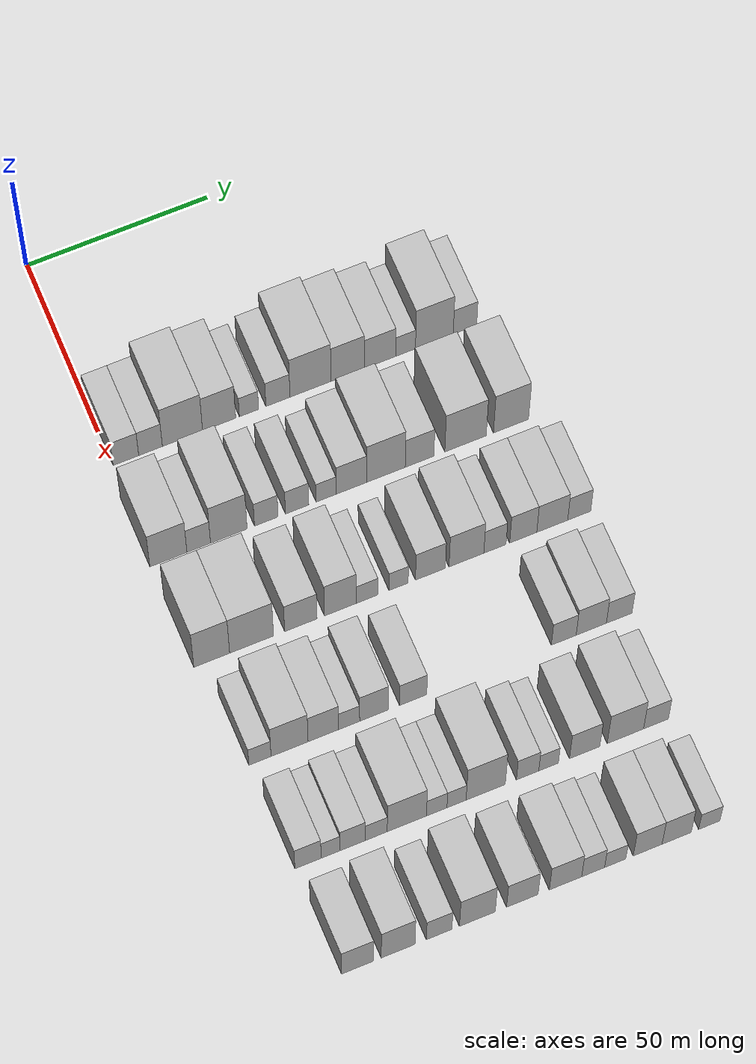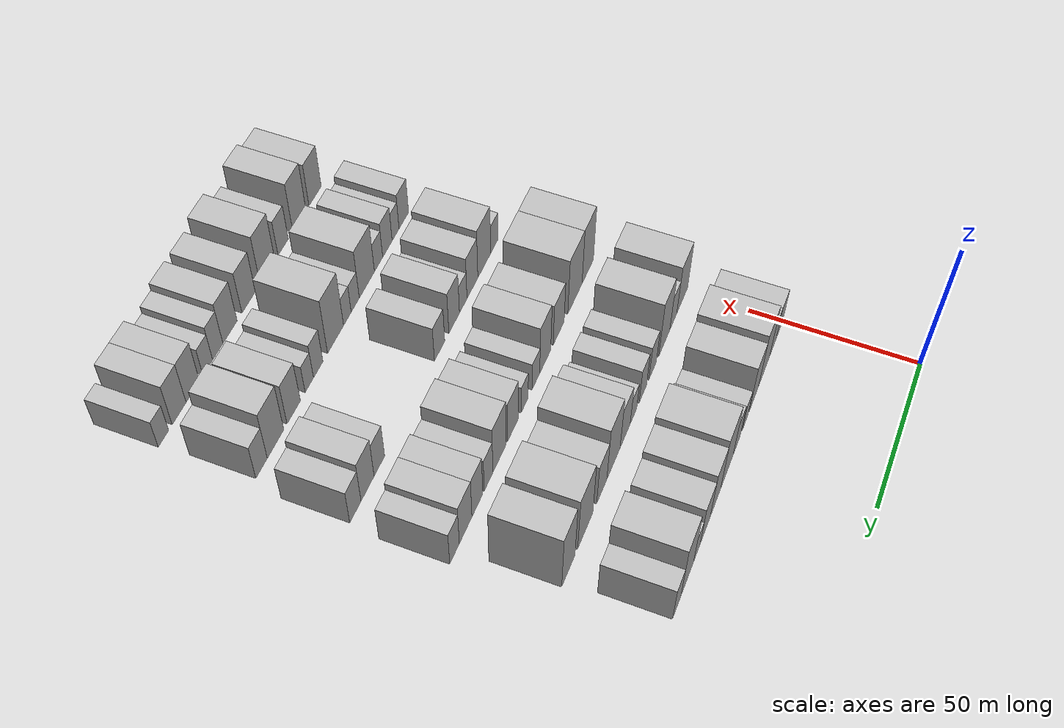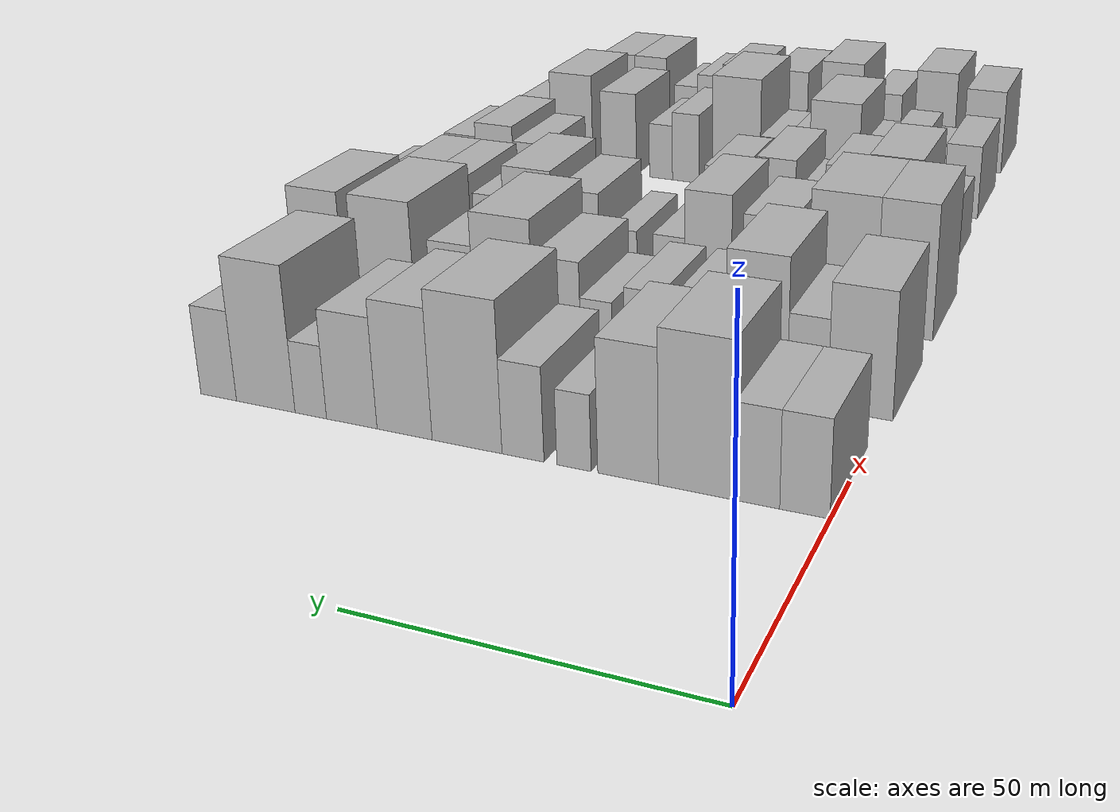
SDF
<sdf version="1.6">
 <world name="default">
  <model name="building_56">
   <static>1</static>
   <pose>50.0000 3.6371 0 0.000000 0.000000 0.000000</pose>
   <link name="link">
    <pose>0 0 7.50 0 0 0</pose>
    <collision name="collision"><geometry><box><size>20.0000 6.9614 15.0000</size></box></geometry></collision>
    <visual name="visual">
     <cast_shadows>0</cast_shadows>
     <geometry><box><size>20.0000 6.9614 15.0000</size></box></geometry>
     <material>
      <script>
       <uri>model://HANNAS_wall/materials/scripts</uri>
       <uri>model://HANNAS_wall/materials/textures</uri>
       <name>vrc/HANNAS_wall</name>
      </script>
     </material>
    </visual>
   </link>
  </model>
  <model name="building_57">
   <static>1</static>
   <pose>50.0000 10.3507 0 0.000000 0.000000 0.000000</pose>
   <link name="link">
    <pose>0 0 7.50 0 0 0</pose>
    <collision name="collision"><geometry><box><size>20.0000 6.4657 15.0000</size></box></geometry></collision>
    <visual name="visual">
     <cast_shadows>0</cast_shadows>
     <geometry><box><size>20.0000 6.4657 15.0000</size></box></geometry>
     <material>
      <script>
       <uri>model://HANNAS_wall/materials/scripts</uri>
       <uri>model://HANNAS_wall/materials/textures</uri>
       <name>vrc/HANNAS_wall</name>
      </script>
     </material>
    </visual>
   </link>
  </model>
  <model name="building_58">
   <static>1</static>
   <pose>50.0000 19.0759 0 0.000000 0.000000 0.000000</pose>
   <link name="link">
    <pose>0 0 12.00 0 0 0</pose>
    <collision name="collision"><geometry><box><size>20.0000 10.9847 24.0000</size></box></geometry></collision>
    <visual name="visual">
     <cast_shadows>0</cast_shadows>
     <geometry><box><size>20.0000 10.9847 24.0000</size></box></geometry>
     <material>
      <script>
       <uri>model://HANNAS_wall/materials/scripts</uri>
       <uri>model://HANNAS_wall/materials/textures</uri>
       <name>vrc/HANNAS_wall</name>
      </script>
     </material>
    </visual>
   </link>
  </model>
  <model name="building_59">
   <static>1</static>
   <pose>50.0000 29.1107 0 0.000000 0.000000 0.000000</pose>
   <link name="link">
    <pose>0 0 10.50 0 0 0</pose>
    <collision name="collision"><geometry><box><size>20.0000 9.0850 21.0000</size></box></geometry></collision>
    <visual name="visual">
     <cast_shadows>0</cast_shadows>
     <geometry><box><size>20.0000 9.0850 21.0000</size></box></geometry>
     <material>
      <script>
       <uri>model://HANNAS_wall/materials/scripts</uri>
       <uri>model://HANNAS_wall/materials/textures</uri>
       <name>vrc/HANNAS_wall</name>
      </script>
     </material>
    </visual>
   </link>
  </model>
  <model name="building_60">
   <static>1</static>
   <pose>50.0000 37.2919 0 0.000000 0.000000 0.000000</pose>
   <link name="link">
    <pose>0 0 6.00 0 0 0</pose>
    <collision name="collision"><geometry><box><size>20.0000 5.2774 12.0000</size></box></geometry></collision>
    <visual name="visual">
     <cast_shadows>0</cast_shadows>
     <geometry><box><size>20.0000 5.2774 12.0000</size></box></geometry>
     <material>
      <script>
       <uri>model://HANNAS_wall/materials/scripts</uri>
       <uri>model://HANNAS_wall/materials/textures</uri>
       <name>vrc/HANNAS_wall</name>
      </script>
     </material>
    </visual>
   </link>
  </model>
  <model name="building_61">
   <static>1</static>
   <pose>50.0000 45.2423 0 0.000000 0.000000 0.000000</pose>
   <link name="link">
    <pose>0 0 7.50 0 0 0</pose>
    <collision name="collision"><geometry><box><size>20.0000 6.6234 15.0000</size></box></geometry></collision>
    <visual name="visual">
     <cast_shadows>0</cast_shadows>
     <geometry><box><size>20.0000 6.6234 15.0000</size></box></geometry>
     <material>
      <script>
       <uri>model://HANNAS_wall/materials/scripts</uri>
       <uri>model://HANNAS_wall/materials/textures</uri>
       <name>vrc/HANNAS_wall</name>
      </script>
     </material>
    </visual>
   </link>
  </model>
  <model name="building_62">
   <static>1</static>
   <pose>50.0000 54.2125 0 0.000000 0.000000 0.000000</pose>
   <link name="link">
    <pose>0 0 12.00 0 0 0</pose>
    <collision name="collision"><geometry><box><size>20.0000 11.3170 24.0000</size></box></geometry></collision>
    <visual name="visual">
     <cast_shadows>0</cast_shadows>
     <geometry><box><size>20.0000 11.3170 24.0000</size></box></geometry>
     <material>
      <script>
       <uri>model://HANNAS_wall/materials/scripts</uri>
       <uri>model://HANNAS_wall/materials/textures</uri>
       <name>vrc/HANNAS_wall</name>
      </script>
     </material>
    </visual>
   </link>
  </model>
  <model name="building_63">
   <static>1</static>
   <pose>50.0000 64.4674 0 0.000000 0.000000 0.000000</pose>
   <link name="link">
    <pose>0 0 10.50 0 0 0</pose>
    <collision name="collision"><geometry><box><size>20.0000 9.1930 21.0000</size></box></geometry></collision>
    <visual name="visual">
     <cast_shadows>0</cast_shadows>
     <geometry><box><size>20.0000 9.1930 21.0000</size></box></geometry>
     <material>
      <script>
       <uri>model://HANNAS_wall/materials/scripts</uri>
       <uri>model://HANNAS_wall/materials/textures</uri>
       <name>vrc/HANNAS_wall</name>
      </script>
     </material>
    </visual>
   </link>
  </model>
  <model name="building_64">
   <static>1</static>
   <pose>50.0000 73.3906 0 0.000000 0.000000 0.000000</pose>
   <link name="link">
    <pose>0 0 9.00 0 0 0</pose>
    <collision name="collision"><geometry><box><size>20.0000 8.6534 18.0000</size></box></geometry></collision>
    <visual name="visual">
     <cast_shadows>0</cast_shadows>
     <geometry><box><size>20.0000 8.6534 18.0000</size></box></geometry>
     <material>
      <script>
       <uri>model://HANNAS_wall/materials/scripts</uri>
       <uri>model://HANNAS_wall/materials/textures</uri>
       <name>vrc/HANNAS_wall</name>
      </script>
     </material>
    </visual>
   </link>
  </model>
  <model name="building_65">
   <static>1</static>
   <pose>50.0000 80.4707 0 0.000000 0.000000 0.000000</pose>
   <link name="link">
    <pose>0 0 6.00 0 0 0</pose>
    <collision name="collision"><geometry><box><size>20.0000 5.5068 12.0000</size></box></geometry></collision>
    <visual name="visual">
     <cast_shadows>0</cast_shadows>
     <geometry><box><size>20.0000 5.5068 12.0000</size></box></geometry>
     <material>
      <script>
       <uri>model://HANNAS_wall/materials/scripts</uri>
       <uri>model://HANNAS_wall/materials/textures</uri>
       <name>vrc/HANNAS_wall</name>
      </script>
     </material>
    </visual>
   </link>
  </model>
  <model name="building_66">
   <static>1</static>
   <pose>50.0000 88.4599 0 0.000000 0.000000 0.000000</pose>
   <link name="link">
    <pose>0 0 12.00 0 0 0</pose>
    <collision name="collision"><geometry><box><size>20.0000 10.4717 24.0000</size></box></geometry></collision>
    <visual name="visual">
     <cast_shadows>0</cast_shadows>
     <geometry><box><size>20.0000 10.4717 24.0000</size></box></geometry>
     <material>
      <script>
       <uri>model://HANNAS_wall/materials/scripts</uri>
       <uri>model://HANNAS_wall/materials/textures</uri>
       <name>vrc/HANNAS_wall</name>
      </script>
     </material>
    </visual>
   </link>
  </model>
  <model name="building_67">
   <static>1</static>
   <pose>50.0000 96.9630 0 0.000000 0.000000 0.000000</pose>
   <link name="link">
    <pose>0 0 7.50 0 0 0</pose>
    <collision name="collision"><geometry><box><size>20.0000 6.5345 15.0000</size></box></geometry></collision>
    <visual name="visual">
     <cast_shadows>0</cast_shadows>
     <geometry><box><size>20.0000 6.5345 15.0000</size></box></geometry>
     <material>
      <script>
       <uri>model://HANNAS_wall/materials/scripts</uri>
       <uri>model://HANNAS_wall/materials/textures</uri>
       <name>vrc/HANNAS_wall</name>
      </script>
     </material>
    </visual>
   </link>
  </model>
  <model name="building_169">
   <static>1</static>
   <pose>79.0000 3.5950 0 0.000000 0.000000 0.000000</pose>
   <link name="link">
    <pose>0 0 10.50 0 0 0</pose>
    <collision name="collision"><geometry><box><size>20.0000 10.0340 21.0000</size></box></geometry></collision>
    <visual name="visual">
     <cast_shadows>0</cast_shadows>
     <geometry><box><size>20.0000 10.0340 21.0000</size></box></geometry>
     <material>
      <script>
       <uri>model://HANNAS_wall/materials/scripts</uri>
       <uri>model://HANNAS_wall/materials/textures</uri>
       <name>vrc/HANNAS_wall</name>
      </script>
     </material>
    </visual>
   </link>
  </model>
  <model name="building_170">
   <static>1</static>
   <pose>79.0000 11.8076 0 0.000000 0.000000 0.000000</pose>
   <link name="link">
    <pose>0 0 7.50 0 0 0</pose>
    <collision name="collision"><geometry><box><size>20.0000 6.3911 15.0000</size></box></geometry></collision>
    <visual name="visual">
     <cast_shadows>0</cast_shadows>
     <geometry><box><size>20.0000 6.3911 15.0000</size></box></geometry>
     <material>
      <script>
       <uri>model://HANNAS_wall/materials/scripts</uri>
       <uri>model://HANNAS_wall/materials/textures</uri>
       <name>vrc/HANNAS_wall</name>
      </script>
     </material>
    </visual>
   </link>
  </model>
  <model name="building_171">
   <static>1</static>
   <pose>79.0000 19.9732 0 0.000000 0.000000 0.000000</pose>
   <link name="link">
    <pose>0 0 12.00 0 0 0</pose>
    <collision name="collision"><geometry><box><size>20.0000 9.9402 24.0000</size></box></geometry></collision>
    <visual name="visual">
     <cast_shadows>0</cast_shadows>
     <geometry><box><size>20.0000 9.9402 24.0000</size></box></geometry>
     <material>
      <script>
       <uri>model://HANNAS_wall/materials/scripts</uri>
       <uri>model://HANNAS_wall/materials/textures</uri>
       <name>vrc/HANNAS_wall</name>
      </script>
     </material>
    </visual>
   </link>
  </model>
  <model name="building_172">
   <static>1</static>
   <pose>79.0000 30.1608 0 0.000000 0.000000 0.000000</pose>
   <link name="link">
    <pose>0 0 7.50 0 0 0</pose>
    <collision name="collision"><geometry><box><size>20.0000 6.4350 15.0000</size></box></geometry></collision>
    <visual name="visual">
     <cast_shadows>0</cast_shadows>
     <geometry><box><size>20.0000 6.4350 15.0000</size></box></geometry>
     <material>
      <script>
       <uri>model://HANNAS_wall/materials/scripts</uri>
       <uri>model://HANNAS_wall/materials/textures</uri>
       <name>vrc/HANNAS_wall</name>
      </script>
     </material>
    </visual>
   </link>
  </model>
  <model name="building_173">
   <static>1</static>
   <pose>79.0000 38.5622 0 0.000000 0.000000 0.000000</pose>
   <link name="link">
    <pose>0 0 7.50 0 0 0</pose>
    <collision name="collision"><geometry><box><size>20.0000 6.3679 15.0000</size></box></geometry></collision>
    <visual name="visual">
     <cast_shadows>0</cast_shadows>
     <geometry><box><size>20.0000 6.3679 15.0000</size></box></geometry>
     <material>
      <script>
       <uri>model://HANNAS_wall/materials/scripts</uri>
       <uri>model://HANNAS_wall/materials/textures</uri>
       <name>vrc/HANNAS_wall</name>
      </script>
     </material>
    </visual>
   </link>
  </model>
  <model name="building_174">
   <static>1</static>
   <pose>79.0000 46.4916 0 0.000000 0.000000 0.000000</pose>
   <link name="link">
    <pose>0 0 6.00 0 0 0</pose>
    <collision name="collision"><geometry><box><size>20.0000 5.4908 12.0000</size></box></geometry></collision>
    <visual name="visual">
     <cast_shadows>0</cast_shadows>
     <geometry><box><size>20.0000 5.4908 12.0000</size></box></geometry>
     <material>
      <script>
       <uri>model://HANNAS_wall/materials/scripts</uri>
       <uri>model://HANNAS_wall/materials/textures</uri>
       <name>vrc/HANNAS_wall</name>
      </script>
     </material>
    </visual>
   </link>
  </model>
  <model name="building_175">
   <static>1</static>
   <pose>79.0000 53.3858 0 0.000000 0.000000 0.000000</pose>
   <link name="link">
    <pose>0 0 9.00 0 0 0</pose>
    <collision name="collision"><geometry><box><size>20.0000 8.2976 18.0000</size></box></geometry></collision>
    <visual name="visual">
     <cast_shadows>0</cast_shadows>
     <geometry><box><size>20.0000 8.2976 18.0000</size></box></geometry>
     <material>
      <script>
       <uri>model://HANNAS_wall/materials/scripts</uri>
       <uri>model://HANNAS_wall/materials/textures</uri>
       <name>vrc/HANNAS_wall</name>
      </script>
     </material>
    </visual>
   </link>
  </model>
  <model name="building_176">
   <static>1</static>
   <pose>79.0000 62.8429 0 0.000000 0.000000 0.000000</pose>
   <link name="link">
    <pose>0 0 12.00 0 0 0</pose>
    <collision name="collision"><geometry><box><size>20.0000 10.6166 24.0000</size></box></geometry></collision>
    <visual name="visual">
     <cast_shadows>0</cast_shadows>
     <geometry><box><size>20.0000 10.6166 24.0000</size></box></geometry>
     <material>
      <script>
       <uri>model://HANNAS_wall/materials/scripts</uri>
       <uri>model://HANNAS_wall/materials/textures</uri>
       <name>vrc/HANNAS_wall</name>
      </script>
     </material>
    </visual>
   </link>
  </model>
  <model name="building_177">
   <static>1</static>
   <pose>79.0000 72.0844 0 0.000000 0.000000 0.000000</pose>
   <link name="link">
    <pose>0 0 9.00 0 0 0</pose>
    <collision name="collision"><geometry><box><size>20.0000 7.8665 18.0000</size></box></geometry></collision>
    <visual name="visual">
     <cast_shadows>0</cast_shadows>
     <geometry><box><size>20.0000 7.8665 18.0000</size></box></geometry>
     <material>
      <script>
       <uri>model://HANNAS_wall/materials/scripts</uri>
       <uri>model://HANNAS_wall/materials/textures</uri>
       <name>vrc/HANNAS_wall</name>
      </script>
     </material>
    </visual>
   </link>
  </model>
  <model name="building_178">
   <static>1</static>
   <pose>79.0000 84.7339 0 0.000000 0.000000 0.000000</pose>
   <link name="link">
    <pose>0 0 12.00 0 0 0</pose>
    <collision name="collision"><geometry><box><size>20.0000 11.4324 24.0000</size></box></geometry></collision>
    <visual name="visual">
     <cast_shadows>0</cast_shadows>
     <geometry><box><size>20.0000 11.4324 24.0000</size></box></geometry>
     <material>
      <script>
       <uri>model://HANNAS_wall/materials/scripts</uri>
       <uri>model://HANNAS_wall/materials/textures</uri>
       <name>vrc/HANNAS_wall</name>
      </script>
     </material>
    </visual>
   </link>
  </model>
  <model name="building_179">
   <static>1</static>
   <pose>79.0000 97.2888 0 0.000000 0.000000 0.000000</pose>
   <link name="link">
    <pose>0 0 12.00 0 0 0</pose>
    <collision name="collision"><geometry><box><size>20.0000 9.6774 24.0000</size></box></geometry></collision>
    <visual name="visual">
     <cast_shadows>0</cast_shadows>
     <geometry><box><size>20.0000 9.6774 24.0000</size></box></geometry>
     <material>
      <script>
       <uri>model://HANNAS_wall/materials/scripts</uri>
       <uri>model://HANNAS_wall/materials/textures</uri>
       <name>vrc/HANNAS_wall</name>
      </script>
     </material>
    </visual>
   </link>
  </model>
  <model name="building_281">
   <static>1</static>
   <pose>108.0000 3.5901 0 0.000000 0.000000 0.000000</pose>
   <link name="link">
    <pose>0 0 12.00 0 0 0</pose>
    <collision name="collision"><geometry><box><size>20.0000 9.6324 24.0000</size></box></geometry></collision>
    <visual name="visual">
     <cast_shadows>0</cast_shadows>
     <geometry><box><size>20.0000 9.6324 24.0000</size></box></geometry>
     <material>
      <script>
       <uri>model://HANNAS_wall/materials/scripts</uri>
       <uri>model://HANNAS_wall/materials/textures</uri>
       <name>vrc/HANNAS_wall</name>
      </script>
     </material>
    </visual>
   </link>
  </model>
  <model name="building_282">
   <static>1</static>
   <pose>108.0000 14.3198 0 0.000000 0.000000 0.000000</pose>
   <link name="link">
    <pose>0 0 12.00 0 0 0</pose>
    <collision name="collision"><geometry><box><size>20.0000 11.8270 24.0000</size></box></geometry></collision>
    <visual name="visual">
     <cast_shadows>0</cast_shadows>
     <geometry><box><size>20.0000 11.8270 24.0000</size></box></geometry>
     <material>
      <script>
       <uri>model://HANNAS_wall/materials/scripts</uri>
       <uri>model://HANNAS_wall/materials/textures</uri>
       <name>vrc/HANNAS_wall</name>
      </script>
     </material>
    </visual>
   </link>
  </model>
  <model name="building_283">
   <static>1</static>
   <pose>108.0000 27.6106 0 0.000000 0.000000 0.000000</pose>
   <link name="link">
    <pose>0 0 9.00 0 0 0</pose>
    <collision name="collision"><geometry><box><size>20.0000 8.7546 18.0000</size></box></geometry></collision>
    <visual name="visual">
     <cast_shadows>0</cast_shadows>
     <geometry><box><size>20.0000 8.7546 18.0000</size></box></geometry>
     <material>
      <script>
       <uri>model://HANNAS_wall/materials/scripts</uri>
       <uri>model://HANNAS_wall/materials/textures</uri>
       <name>vrc/HANNAS_wall</name>
      </script>
     </material>
    </visual>
   </link>
  </model>
  <model name="building_284">
   <static>1</static>
   <pose>108.0000 38.2926 0 0.000000 0.000000 0.000000</pose>
   <link name="link">
    <pose>0 0 10.50 0 0 0</pose>
    <collision name="collision"><geometry><box><size>20.0000 8.6093 21.0000</size></box></geometry></collision>
    <visual name="visual">
     <cast_shadows>0</cast_shadows>
     <geometry><box><size>20.0000 8.6093 21.0000</size></box></geometry>
     <material>
      <script>
       <uri>model://HANNAS_wall/materials/scripts</uri>
       <uri>model://HANNAS_wall/materials/textures</uri>
       <name>vrc/HANNAS_wall</name>
      </script>
     </material>
    </visual>
   </link>
  </model>
  <model name="building_285">
   <static>1</static>
   <pose>108.0000 45.5428 0 0.000000 0.000000 0.000000</pose>
   <link name="link">
    <pose>0 0 6.00 0 0 0</pose>
    <collision name="collision"><geometry><box><size>20.0000 5.8910 12.0000</size></box></geometry></collision>
    <visual name="visual">
     <cast_shadows>0</cast_shadows>
     <geometry><box><size>20.0000 5.8910 12.0000</size></box></geometry>
     <material>
      <script>
       <uri>model://HANNAS_wall/materials/scripts</uri>
       <uri>model://HANNAS_wall/materials/textures</uri>
       <name>vrc/HANNAS_wall</name>
      </script>
     </material>
    </visual>
   </link>
  </model>
  <model name="building_286">
   <static>1</static>
   <pose>108.0000 54.0891 0 0.000000 0.000000 0.000000</pose>
   <link name="link">
    <pose>0 0 6.00 0 0 0</pose>
    <collision name="collision"><geometry><box><size>20.0000 5.2016 12.0000</size></box></geometry></collision>
    <visual name="visual">
     <cast_shadows>0</cast_shadows>
     <geometry><box><size>20.0000 5.2016 12.0000</size></box></geometry>
     <material>
      <script>
       <uri>model://HANNAS_wall/materials/scripts</uri>
       <uri>model://HANNAS_wall/materials/textures</uri>
       <name>vrc/HANNAS_wall</name>
      </script>
     </material>
    </visual>
   </link>
  </model>
  <model name="building_287">
   <static>1</static>
   <pose>108.0000 62.7587 0 0.000000 0.000000 0.000000</pose>
   <link name="link">
    <pose>0 0 9.00 0 0 0</pose>
    <collision name="collision"><geometry><box><size>20.0000 8.1377 18.0000</size></box></geometry></collision>
    <visual name="visual">
     <cast_shadows>0</cast_shadows>
     <geometry><box><size>20.0000 8.1377 18.0000</size></box></geometry>
     <material>
      <script>
       <uri>model://HANNAS_wall/materials/scripts</uri>
       <uri>model://HANNAS_wall/materials/textures</uri>
       <name>vrc/HANNAS_wall</name>
      </script>
     </material>
    </visual>
   </link>
  </model>
  <model name="building_288">
   <static>1</static>
   <pose>108.0000 72.5805 0 0.000000 0.000000 0.000000</pose>
   <link name="link">
    <pose>0 0 10.50 0 0 0</pose>
    <collision name="collision"><geometry><box><size>20.0000 9.5059 21.0000</size></box></geometry></collision>
    <visual name="visual">
     <cast_shadows>0</cast_shadows>
     <geometry><box><size>20.0000 9.5059 21.0000</size></box></geometry>
     <material>
      <script>
       <uri>model://HANNAS_wall/materials/scripts</uri>
       <uri>model://HANNAS_wall/materials/textures</uri>
       <name>vrc/HANNAS_wall</name>
      </script>
     </material>
    </visual>
   </link>
  </model>
  <model name="building_289">
   <static>1</static>
   <pose>108.0000 80.3712 0 0.000000 0.000000 0.000000</pose>
   <link name="link">
    <pose>0 0 7.50 0 0 0</pose>
    <collision name="collision"><geometry><box><size>20.0000 6.0755 15.0000</size></box></geometry></collision>
    <visual name="visual">
     <cast_shadows>0</cast_shadows>
     <geometry><box><size>20.0000 6.0755 15.0000</size></box></geometry>
     <material>
      <script>
       <uri>model://HANNAS_wall/materials/scripts</uri>
       <uri>model://HANNAS_wall/materials/textures</uri>
       <name>vrc/HANNAS_wall</name>
      </script>
     </material>
    </visual>
   </link>
  </model>
  <model name="building_290">
   <static>1</static>
   <pose>108.0000 88.1270 0 0.000000 0.000000 0.000000</pose>
   <link name="link">
    <pose>0 0 9.00 0 0 0</pose>
    <collision name="collision"><geometry><box><size>20.0000 7.4360 18.0000</size></box></geometry></collision>
    <visual name="visual">
     <cast_shadows>0</cast_shadows>
     <geometry><box><size>20.0000 7.4360 18.0000</size></box></geometry>
     <material>
      <script>
       <uri>model://HANNAS_wall/materials/scripts</uri>
       <uri>model://HANNAS_wall/materials/textures</uri>
       <name>vrc/HANNAS_wall</name>
      </script>
     </material>
    </visual>
   </link>
  </model>
  <model name="building_291">
   <static>1</static>
   <pose>108.0000 96.0895 0 0.000000 0.000000 0.000000</pose>
   <link name="link">
    <pose>0 0 9.00 0 0 0</pose>
    <collision name="collision"><geometry><box><size>20.0000 8.4892 18.0000</size></box></geometry></collision>
    <visual name="visual">
     <cast_shadows>0</cast_shadows>
     <geometry><box><size>20.0000 8.4892 18.0000</size></box></geometry>
     <material>
      <script>
       <uri>model://HANNAS_wall/materials/scripts</uri>
       <uri>model://HANNAS_wall/materials/textures</uri>
       <name>vrc/HANNAS_wall</name>
      </script>
     </material>
    </visual>
   </link>
  </model>
  <model name="building_292">
   <static>1</static>
   <pose>108.0000 103.4969 0 0.000000 0.000000 0.000000</pose>
   <link name="link">
    <pose>0 0 7.50 0 0 0</pose>
    <collision name="collision"><geometry><box><size>20.0000 6.3256 15.0000</size></box></geometry></collision>
    <visual name="visual">
     <cast_shadows>0</cast_shadows>
     <geometry><box><size>20.0000 6.3256 15.0000</size></box></geometry>
     <material>
      <script>
       <uri>model://HANNAS_wall/materials/scripts</uri>
       <uri>model://HANNAS_wall/materials/textures</uri>
       <name>vrc/HANNAS_wall</name>
      </script>
     </material>
    </visual>
   </link>
  </model>
  <model name="building_388">
   <static>1</static>
   <pose>137.0000 4.7180 0 0.000000 0.000000 0.000000</pose>
   <link name="link">
    <pose>0 0 6.00 0 0 0</pose>
    <collision name="collision"><geometry><box><size>20.0000 5.9204 12.0000</size></box></geometry></collision>
    <visual name="visual">
     <cast_shadows>0</cast_shadows>
     <geometry><box><size>20.0000 5.9204 12.0000</size></box></geometry>
     <material>
      <script>
       <uri>model://HANNAS_wall/materials/scripts</uri>
       <uri>model://HANNAS_wall/materials/textures</uri>
       <name>vrc/HANNAS_wall</name>
      </script>
     </material>
    </visual>
   </link>
  </model>
  <model name="building_389">
   <static>1</static>
   <pose>137.0000 12.6287 0 0.000000 0.000000 0.000000</pose>
   <link name="link">
    <pose>0 0 10.50 0 0 0</pose>
    <collision name="collision"><geometry><box><size>20.0000 9.9010 21.0000</size></box></geometry></collision>
    <visual name="visual">
     <cast_shadows>0</cast_shadows>
     <geometry><box><size>20.0000 9.9010 21.0000</size></box></geometry>
     <material>
      <script>
       <uri>model://HANNAS_wall/materials/scripts</uri>
       <uri>model://HANNAS_wall/materials/textures</uri>
       <name>vrc/HANNAS_wall</name>
      </script>
     </material>
    </visual>
   </link>
  </model>
  <model name="building_390">
   <static>1</static>
   <pose>137.0000 21.6824 0 0.000000 0.000000 0.000000</pose>
   <link name="link">
    <pose>0 0 9.00 0 0 0</pose>
    <collision name="collision"><geometry><box><size>20.0000 8.2063 18.0000</size></box></geometry></collision>
    <visual name="visual">
     <cast_shadows>0</cast_shadows>
     <geometry><box><size>20.0000 8.2063 18.0000</size></box></geometry>
     <material>
      <script>
       <uri>model://HANNAS_wall/materials/scripts</uri>
       <uri>model://HANNAS_wall/materials/textures</uri>
       <name>vrc/HANNAS_wall</name>
      </script>
     </material>
    </visual>
   </link>
  </model>
  <model name="building_391">
   <static>1</static>
   <pose>137.0000 28.5979 0 0.000000 0.000000 0.000000</pose>
   <link name="link">
    <pose>0 0 6.00 0 0 0</pose>
    <collision name="collision"><geometry><box><size>20.0000 5.6248 12.0000</size></box></geometry></collision>
    <visual name="visual">
     <cast_shadows>0</cast_shadows>
     <geometry><box><size>20.0000 5.6248 12.0000</size></box></geometry>
     <material>
      <script>
       <uri>model://HANNAS_wall/materials/scripts</uri>
       <uri>model://HANNAS_wall/materials/textures</uri>
       <name>vrc/HANNAS_wall</name>
      </script>
     </material>
    </visual>
   </link>
  </model>
  <model name="building_392">
   <static>1</static>
   <pose>137.0000 35.2708 0 0.000000 0.000000 0.000000</pose>
   <link name="link">
    <pose>0 0 9.00 0 0 0</pose>
    <collision name="collision"><geometry><box><size>20.0000 7.7209 18.0000</size></box></geometry></collision>
    <visual name="visual">
     <cast_shadows>0</cast_shadows>
     <geometry><box><size>20.0000 7.7209 18.0000</size></box></geometry>
     <material>
      <script>
       <uri>model://HANNAS_wall/materials/scripts</uri>
       <uri>model://HANNAS_wall/materials/textures</uri>
       <name>vrc/HANNAS_wall</name>
      </script>
     </material>
    </visual>
   </link>
  </model>
  <model name="building_393">
   <static>1</static>
   <pose>137.0000 45.7979 0 0.000000 0.000000 0.000000</pose>
   <link name="link">
    <pose>0 0 7.50 0 0 0</pose>
    <collision name="collision"><geometry><box><size>20.0000 7.3332 15.0000</size></box></geometry></collision>
    <visual name="visual">
     <cast_shadows>0</cast_shadows>
     <geometry><box><size>20.0000 7.3332 15.0000</size></box></geometry>
     <material>
      <script>
       <uri>model://HANNAS_wall/materials/scripts</uri>
       <uri>model://HANNAS_wall/materials/textures</uri>
       <name>vrc/HANNAS_wall</name>
      </script>
     </material>
    </visual>
   </link>
  </model>
  <model name="building_394">
   <static>1</static>
   <pose>137.0000 86.6029 0 0.000000 0.000000 0.000000</pose>
   <link name="link">
    <pose>0 0 7.50 0 0 0</pose>
    <collision name="collision"><geometry><box><size>20.0000 6.7590 15.0000</size></box></geometry></collision>
    <visual name="visual">
     <cast_shadows>0</cast_shadows>
     <geometry><box><size>20.0000 6.7590 15.0000</size></box></geometry>
     <material>
      <script>
       <uri>model://HANNAS_wall/materials/scripts</uri>
       <uri>model://HANNAS_wall/materials/textures</uri>
       <name>vrc/HANNAS_wall</name>
      </script>
     </material>
    </visual>
   </link>
  </model>
  <model name="building_395">
   <static>1</static>
   <pose>137.0000 94.1016 0 0.000000 0.000000 0.000000</pose>
   <link name="link">
    <pose>0 0 9.00 0 0 0</pose>
    <collision name="collision"><geometry><box><size>20.0000 8.2383 18.0000</size></box></geometry></collision>
    <visual name="visual">
     <cast_shadows>0</cast_shadows>
     <geometry><box><size>20.0000 8.2383 18.0000</size></box></geometry>
     <material>
      <script>
       <uri>model://HANNAS_wall/materials/scripts</uri>
       <uri>model://HANNAS_wall/materials/textures</uri>
       <name>vrc/HANNAS_wall</name>
      </script>
     </material>
    </visual>
   </link>
  </model>
  <model name="building_396">
   <static>1</static>
   <pose>137.0000 101.7166 0 0.000000 0.000000 0.000000</pose>
   <link name="link">
    <pose>0 0 7.50 0 0 0</pose>
    <collision name="collision"><geometry><box><size>20.0000 6.9916 15.0000</size></box></geometry></collision>
    <visual name="visual">
     <cast_shadows>0</cast_shadows>
     <geometry><box><size>20.0000 6.9916 15.0000</size></box></geometry>
     <material>
      <script>
       <uri>model://HANNAS_wall/materials/scripts</uri>
       <uri>model://HANNAS_wall/materials/textures</uri>
       <name>vrc/HANNAS_wall</name>
      </script>
     </material>
    </visual>
   </link>
  </model>
  <model name="building_499">
   <static>1</static>
   <pose>166.0000 5.5678 0 0.000000 0.000000 0.000000</pose>
   <link name="link">
    <pose>0 0 7.50 0 0 0</pose>
    <collision name="collision"><geometry><box><size>20.0000 6.9703 15.0000</size></box></geometry></collision>
    <visual name="visual">
     <cast_shadows>0</cast_shadows>
     <geometry><box><size>20.0000 6.9703 15.0000</size></box></geometry>
     <material>
      <script>
       <uri>model://HANNAS_wall/materials/scripts</uri>
       <uri>model://HANNAS_wall/materials/textures</uri>
       <name>vrc/HANNAS_wall</name>
      </script>
     </material>
    </visual>
   </link>
  </model>
  <model name="building_500">
   <static>1</static>
   <pose>166.0000 11.5500 0 0.000000 0.000000 0.000000</pose>
   <link name="link">
    <pose>0 0 6.00 0 0 0</pose>
    <collision name="collision"><geometry><box><size>20.0000 4.9941 12.0000</size></box></geometry></collision>
    <visual name="visual">
     <cast_shadows>0</cast_shadows>
     <geometry><box><size>20.0000 4.9941 12.0000</size></box></geometry>
     <material>
      <script>
       <uri>model://HANNAS_wall/materials/scripts</uri>
       <uri>model://HANNAS_wall/materials/textures</uri>
       <name>vrc/HANNAS_wall</name>
      </script>
     </material>
    </visual>
   </link>
  </model>
  <model name="building_501">
   <static>1</static>
   <pose>166.0000 17.4216 0 0.000000 0.000000 0.000000</pose>
   <link name="link">
    <pose>0 0 7.50 0 0 0</pose>
    <collision name="collision"><geometry><box><size>20.0000 6.7491 15.0000</size></box></geometry></collision>
    <visual name="visual">
     <cast_shadows>0</cast_shadows>
     <geometry><box><size>20.0000 6.7491 15.0000</size></box></geometry>
     <material>
      <script>
       <uri>model://HANNAS_wall/materials/scripts</uri>
       <uri>model://HANNAS_wall/materials/textures</uri>
       <name>vrc/HANNAS_wall</name>
      </script>
     </material>
    </visual>
   </link>
  </model>
  <model name="building_502">
   <static>1</static>
   <pose>166.0000 23.7108 0 0.000000 0.000000 0.000000</pose>
   <link name="link">
    <pose>0 0 6.00 0 0 0</pose>
    <collision name="collision"><geometry><box><size>20.0000 5.8292 12.0000</size></box></geometry></collision>
    <visual name="visual">
     <cast_shadows>0</cast_shadows>
     <geometry><box><size>20.0000 5.8292 12.0000</size></box></geometry>
     <material>
      <script>
       <uri>model://HANNAS_wall/materials/scripts</uri>
       <uri>model://HANNAS_wall/materials/textures</uri>
       <name>vrc/HANNAS_wall</name>
      </script>
     </material>
    </visual>
   </link>
  </model>
  <model name="building_503">
   <static>1</static>
   <pose>166.0000 31.8571 0 0.000000 0.000000 0.000000</pose>
   <link name="link">
    <pose>0 0 10.50 0 0 0</pose>
    <collision name="collision"><geometry><box><size>20.0000 10.4635 21.0000</size></box></geometry></collision>
    <visual name="visual">
     <cast_shadows>0</cast_shadows>
     <geometry><box><size>20.0000 10.4635 21.0000</size></box></geometry>
     <material>
      <script>
       <uri>model://HANNAS_wall/materials/scripts</uri>
       <uri>model://HANNAS_wall/materials/textures</uri>
       <name>vrc/HANNAS_wall</name>
      </script>
     </material>
    </visual>
   </link>
  </model>
  <model name="building_504">
   <static>1</static>
   <pose>166.0000 39.8364 0 0.000000 0.000000 0.000000</pose>
   <link name="link">
    <pose>0 0 6.00 0 0 0</pose>
    <collision name="collision"><geometry><box><size>20.0000 5.4951 12.0000</size></box></geometry></collision>
    <visual name="visual">
     <cast_shadows>0</cast_shadows>
     <geometry><box><size>20.0000 5.4951 12.0000</size></box></geometry>
     <material>
      <script>
       <uri>model://HANNAS_wall/materials/scripts</uri>
       <uri>model://HANNAS_wall/materials/textures</uri>
       <name>vrc/HANNAS_wall</name>
      </script>
     </material>
    </visual>
   </link>
  </model>
  <model name="building_505">
   <static>1</static>
   <pose>166.0000 45.1381 0 0.000000 0.000000 0.000000</pose>
   <link name="link">
    <pose>0 0 6.00 0 0 0</pose>
    <collision name="collision"><geometry><box><size>20.0000 5.1084 12.0000</size></box></geometry></collision>
    <visual name="visual">
     <cast_shadows>0</cast_shadows>
     <geometry><box><size>20.0000 5.1084 12.0000</size></box></geometry>
     <material>
      <script>
       <uri>model://HANNAS_wall/materials/scripts</uri>
       <uri>model://HANNAS_wall/materials/textures</uri>
       <name>vrc/HANNAS_wall</name>
      </script>
     </material>
    </visual>
   </link>
  </model>
  <model name="building_506">
   <static>1</static>
   <pose>166.0000 52.9490 0 0.000000 0.000000 0.000000</pose>
   <link name="link">
    <pose>0 0 12.00 0 0 0</pose>
    <collision name="collision"><geometry><box><size>20.0000 10.5133 24.0000</size></box></geometry></collision>
    <visual name="visual">
     <cast_shadows>0</cast_shadows>
     <geometry><box><size>20.0000 10.5133 24.0000</size></box></geometry>
     <material>
      <script>
       <uri>model://HANNAS_wall/materials/scripts</uri>
       <uri>model://HANNAS_wall/materials/textures</uri>
       <name>vrc/HANNAS_wall</name>
      </script>
     </material>
    </visual>
   </link>
  </model>
  <model name="building_507">
   <static>1</static>
   <pose>166.0000 64.2107 0 0.000000 0.000000 0.000000</pose>
   <link name="link">
    <pose>0 0 7.50 0 0 0</pose>
    <collision name="collision"><geometry><box><size>20.0000 6.0101 15.0000</size></box></geometry></collision>
    <visual name="visual">
     <cast_shadows>0</cast_shadows>
     <geometry><box><size>20.0000 6.0101 15.0000</size></box></geometry>
     <material>
      <script>
       <uri>model://HANNAS_wall/materials/scripts</uri>
       <uri>model://HANNAS_wall/materials/textures</uri>
       <name>vrc/HANNAS_wall</name>
      </script>
     </material>
    </visual>
   </link>
  </model>
  <model name="building_508">
   <static>1</static>
   <pose>166.0000 69.8537 0 0.000000 0.000000 0.000000</pose>
   <link name="link">
    <pose>0 0 6.00 0 0 0</pose>
    <collision name="collision"><geometry><box><size>20.0000 5.2760 12.0000</size></box></geometry></collision>
    <visual name="visual">
     <cast_shadows>0</cast_shadows>
     <geometry><box><size>20.0000 5.2760 12.0000</size></box></geometry>
     <material>
      <script>
       <uri>model://HANNAS_wall/materials/scripts</uri>
       <uri>model://HANNAS_wall/materials/textures</uri>
       <name>vrc/HANNAS_wall</name>
      </script>
     </material>
    </visual>
   </link>
  </model>
  <model name="building_509">
   <static>1</static>
   <pose>166.0000 79.5871 0 0.000000 0.000000 0.000000</pose>
   <link name="link">
    <pose>0 0 9.00 0 0 0</pose>
    <collision name="collision"><geometry><box><size>20.0000 8.1909 18.0000</size></box></geometry></collision>
    <visual name="visual">
     <cast_shadows>0</cast_shadows>
     <geometry><box><size>20.0000 8.1909 18.0000</size></box></geometry>
     <material>
      <script>
       <uri>model://HANNAS_wall/materials/scripts</uri>
       <uri>model://HANNAS_wall/materials/textures</uri>
       <name>vrc/HANNAS_wall</name>
      </script>
     </material>
    </visual>
   </link>
  </model>
  <model name="building_510">
   <static>1</static>
   <pose>166.0000 90.6012 0 0.000000 0.000000 0.000000</pose>
   <link name="link">
    <pose>0 0 10.50 0 0 0</pose>
    <collision name="collision"><geometry><box><size>20.0000 9.8373 21.0000</size></box></geometry></collision>
    <visual name="visual">
     <cast_shadows>0</cast_shadows>
     <geometry><box><size>20.0000 9.8373 21.0000</size></box></geometry>
     <material>
      <script>
       <uri>model://HANNAS_wall/materials/scripts</uri>
       <uri>model://HANNAS_wall/materials/textures</uri>
       <name>vrc/HANNAS_wall</name>
      </script>
     </material>
    </visual>
   </link>
  </model>
  <model name="building_511">
   <static>1</static>
   <pose>166.0000 98.8764 0 0.000000 0.000000 0.000000</pose>
   <link name="link">
    <pose>0 0 7.50 0 0 0</pose>
    <collision name="collision"><geometry><box><size>20.0000 6.7131 15.0000</size></box></geometry></collision>
    <visual name="visual">
     <cast_shadows>0</cast_shadows>
     <geometry><box><size>20.0000 6.7131 15.0000</size></box></geometry>
     <material>
      <script>
       <uri>model://HANNAS_wall/materials/scripts</uri>
       <uri>model://HANNAS_wall/materials/textures</uri>
       <name>vrc/HANNAS_wall</name>
      </script>
     </material>
    </visual>
   </link>
  </model>
  <model name="building_623">
   <static>1</static>
   <pose>195.0000 6.6204 0 0.000000 0.000000 0.000000</pose>
   <link name="link">
    <pose>0 0 9.00 0 0 0</pose>
    <collision name="collision"><geometry><box><size>20.0000 8.4615 18.0000</size></box></geometry></collision>
    <visual name="visual">
     <cast_shadows>0</cast_shadows>
     <geometry><box><size>20.0000 8.4615 18.0000</size></box></geometry>
     <material>
      <script>
       <uri>model://HANNAS_wall/materials/scripts</uri>
       <uri>model://HANNAS_wall/materials/textures</uri>
       <name>vrc/HANNAS_wall</name>
      </script>
     </material>
    </visual>
   </link>
  </model>
  <model name="building_624">
   <static>1</static>
   <pose>195.0000 17.3111 0 0.000000 0.000000 0.000000</pose>
   <link name="link">
    <pose>0 0 10.50 0 0 0</pose>
    <collision name="collision"><geometry><box><size>20.0000 8.9200 21.0000</size></box></geometry></collision>
    <visual name="visual">
     <cast_shadows>0</cast_shadows>
     <geometry><box><size>20.0000 8.9200 21.0000</size></box></geometry>
     <material>
      <script>
       <uri>model://HANNAS_wall/materials/scripts</uri>
       <uri>model://HANNAS_wall/materials/textures</uri>
       <name>vrc/HANNAS_wall</name>
      </script>
     </material>
    </visual>
   </link>
  </model>
  <model name="building_625">
   <static>1</static>
   <pose>195.0000 28.1536 0 0.000000 0.000000 0.000000</pose>
   <link name="link">
    <pose>0 0 7.50 0 0 0</pose>
    <collision name="collision"><geometry><box><size>20.0000 6.7649 15.0000</size></box></geometry></collision>
    <visual name="visual">
     <cast_shadows>0</cast_shadows>
     <geometry><box><size>20.0000 6.7649 15.0000</size></box></geometry>
     <material>
      <script>
       <uri>model://HANNAS_wall/materials/scripts</uri>
       <uri>model://HANNAS_wall/materials/textures</uri>
       <name>vrc/HANNAS_wall</name>
      </script>
     </material>
    </visual>
   </link>
  </model>
  <model name="building_626">
   <static>1</static>
   <pose>195.0000 38.2949 0 0.000000 0.000000 0.000000</pose>
   <link name="link">
    <pose>0 0 10.50 0 0 0</pose>
    <collision name="collision"><geometry><box><size>20.0000 9.5178 21.0000</size></box></geometry></collision>
    <visual name="visual">
     <cast_shadows>0</cast_shadows>
     <geometry><box><size>20.0000 9.5178 21.0000</size></box></geometry>
     <material>
      <script>
       <uri>model://HANNAS_wall/materials/scripts</uri>
       <uri>model://HANNAS_wall/materials/textures</uri>
       <name>vrc/HANNAS_wall</name>
      </script>
     </material>
    </visual>
   </link>
  </model>
  <model name="building_627">
   <static>1</static>
   <pose>195.0000 50.2477 0 0.000000 0.000000 0.000000</pose>
   <link name="link">
    <pose>0 0 9.00 0 0 0</pose>
    <collision name="collision"><geometry><box><size>20.0000 8.3877 18.0000</size></box></geometry></collision>
    <visual name="visual">
     <cast_shadows>0</cast_shadows>
     <geometry><box><size>20.0000 8.3877 18.0000</size></box></geometry>
     <material>
      <script>
       <uri>model://HANNAS_wall/materials/scripts</uri>
       <uri>model://HANNAS_wall/materials/textures</uri>
       <name>vrc/HANNAS_wall</name>
      </script>
     </material>
    </visual>
   </link>
  </model>
  <model name="building_628">
   <static>1</static>
   <pose>195.0000 61.7572 0 0.000000 0.000000 0.000000</pose>
   <link name="link">
    <pose>0 0 9.00 0 0 0</pose>
    <collision name="collision"><geometry><box><size>20.0000 8.6313 18.0000</size></box></geometry></collision>
    <visual name="visual">
     <cast_shadows>0</cast_shadows>
     <geometry><box><size>20.0000 8.6313 18.0000</size></box></geometry>
     <material>
      <script>
       <uri>model://HANNAS_wall/materials/scripts</uri>
       <uri>model://HANNAS_wall/materials/textures</uri>
       <name>vrc/HANNAS_wall</name>
      </script>
     </material>
    </visual>
   </link>
  </model>
  <model name="building_629">
   <static>1</static>
   <pose>195.0000 69.1390 0 0.000000 0.000000 0.000000</pose>
   <link name="link">
    <pose>0 0 7.50 0 0 0</pose>
    <collision name="collision"><geometry><box><size>20.0000 6.1323 15.0000</size></box></geometry></collision>
    <visual name="visual">
     <cast_shadows>0</cast_shadows>
     <geometry><box><size>20.0000 6.1323 15.0000</size></box></geometry>
     <material>
      <script>
       <uri>model://HANNAS_wall/materials/scripts</uri>
       <uri>model://HANNAS_wall/materials/textures</uri>
       <name>vrc/HANNAS_wall</name>
      </script>
     </material>
    </visual>
   </link>
  </model>
  <model name="building_630">
   <static>1</static>
   <pose>195.0000 75.0485 0 0.000000 0.000000 0.000000</pose>
   <link name="link">
    <pose>0 0 6.00 0 0 0</pose>
    <collision name="collision"><geometry><box><size>20.0000 5.6866 12.0000</size></box></geometry></collision>
    <visual name="visual">
     <cast_shadows>0</cast_shadows>
     <geometry><box><size>20.0000 5.6866 12.0000</size></box></geometry>
     <material>
      <script>
       <uri>model://HANNAS_wall/materials/scripts</uri>
       <uri>model://HANNAS_wall/materials/textures</uri>
       <name>vrc/HANNAS_wall</name>
      </script>
     </material>
    </visual>
   </link>
  </model>
  <model name="building_631">
   <static>1</static>
   <pose>195.0000 83.7565 0 0.000000 0.000000 0.000000</pose>
   <link name="link">
    <pose>0 0 9.00 0 0 0</pose>
    <collision name="collision"><geometry><box><size>20.0000 7.7293 18.0000</size></box></geometry></collision>
    <visual name="visual">
     <cast_shadows>0</cast_shadows>
     <geometry><box><size>20.0000 7.7293 18.0000</size></box></geometry>
     <material>
      <script>
       <uri>model://HANNAS_wall/materials/scripts</uri>
       <uri>model://HANNAS_wall/materials/textures</uri>
       <name>vrc/HANNAS_wall</name>
      </script>
     </material>
    </visual>
   </link>
  </model>
  <model name="building_632">
   <static>1</static>
   <pose>195.0000 91.5419 0 0.000000 0.000000 0.000000</pose>
   <link name="link">
    <pose>0 0 9.00 0 0 0</pose>
    <collision name="collision"><geometry><box><size>20.0000 7.8415 18.0000</size></box></geometry></collision>
    <visual name="visual">
     <cast_shadows>0</cast_shadows>
     <geometry><box><size>20.0000 7.8415 18.0000</size></box></geometry>
     <material>
      <script>
       <uri>model://HANNAS_wall/materials/scripts</uri>
       <uri>model://HANNAS_wall/materials/textures</uri>
       <name>vrc/HANNAS_wall</name>
      </script>
     </material>
    </visual>
   </link>
  </model>
  <model name="building_633">
   <static>1</static>
   <pose>195.0000 100.3365 0 0.000000 0.000000 0.000000</pose>
   <link name="link">
    <pose>0 0 6.00 0 0 0</pose>
    <collision name="collision"><geometry><box><size>20.0000 5.7478 12.0000</size></box></geometry></collision>
    <visual name="visual">
     <cast_shadows>0</cast_shadows>
     <geometry><box><size>20.0000 5.7478 12.0000</size></box></geometry>
     <material>
      <script>
       <uri>model://HANNAS_wall/materials/scripts</uri>
       <uri>model://HANNAS_wall/materials/textures</uri>
       <name>vrc/HANNAS_wall</name>
      </script>
     </material>
    </visual>
   </link>
  </model>
 </world>
</sdf>
